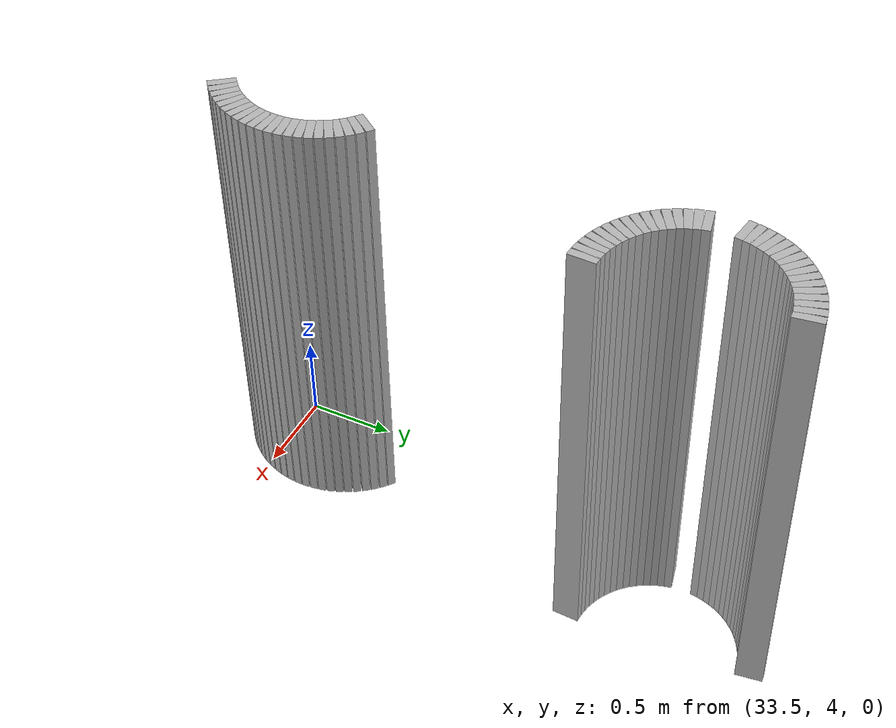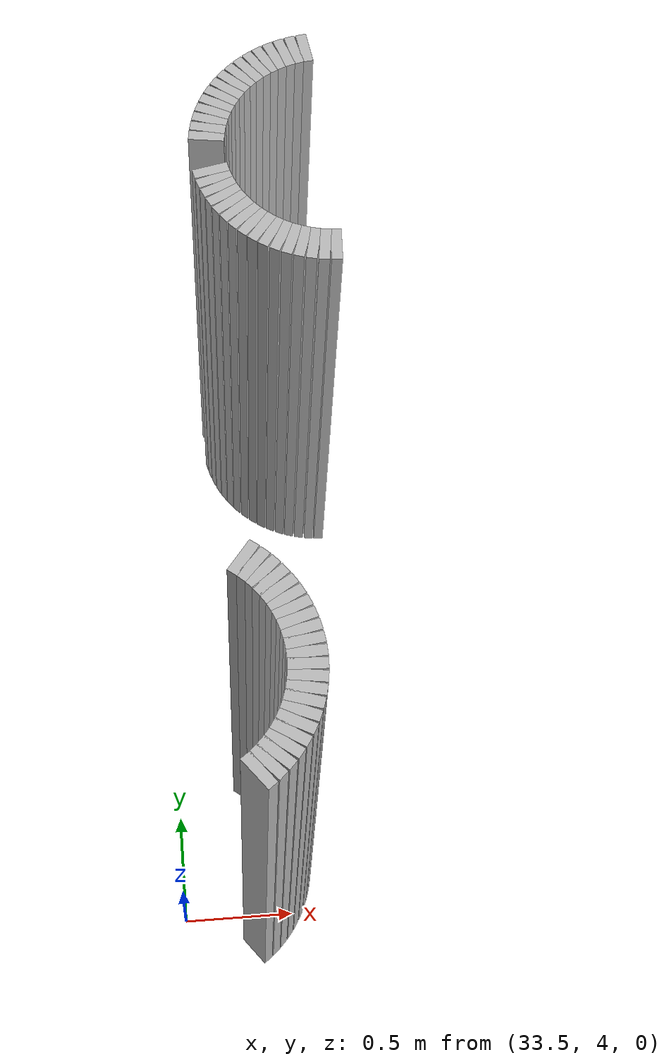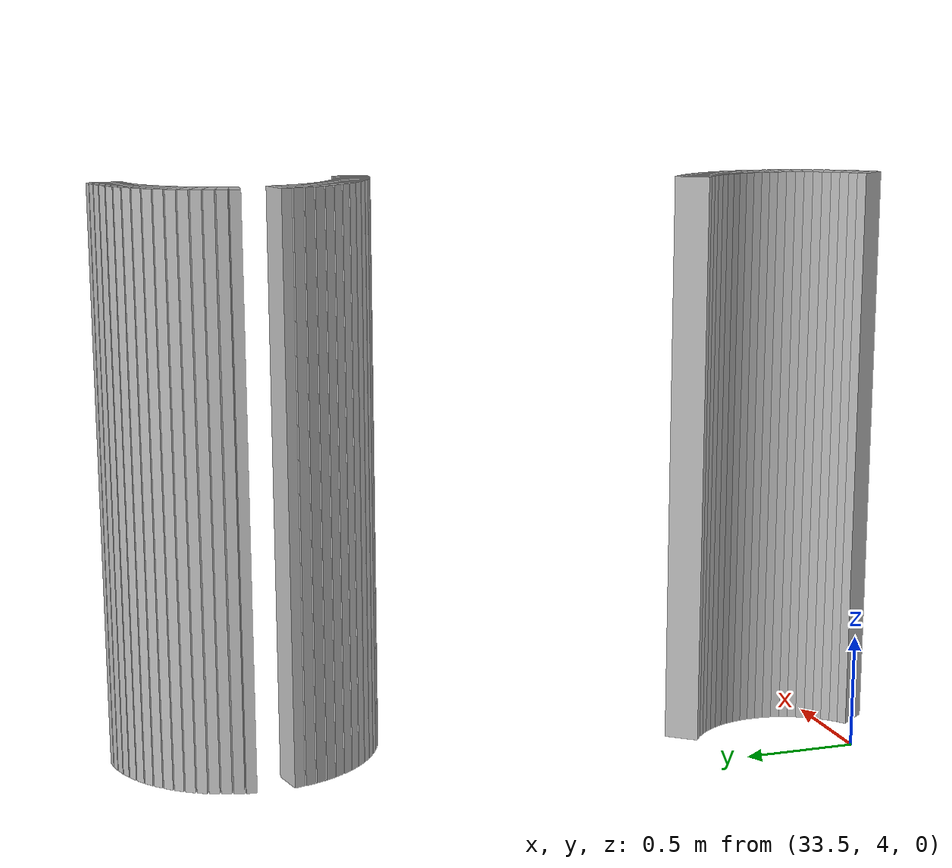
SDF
<sdf version="1.6">
 <model name="sps_2105">
  <static>1</static>
  <allow_auto_disable>0</allow_auto_disable>
  <link name="Wall1516">
   <collision name="collision"><geometry><box><size>0.0454023 0.15 2.5</size></box></geometry></collision>
   <visual name="visual">
    <geometry><box><size>0.0454023 0.15 2.5</size></box></geometry>
    <transparency>0.0</transparency>
   </visual>
   <pose>34.2988 6.05177 1.25 0 -0 3.09318</pose>
  </link>
  <link name="Wall1517">
   <collision name="collision"><geometry><box><size>0.0454156 0.15 2.5</size></box></geometry></collision>
   <visual name="visual">
    <geometry><box><size>0.0454156 0.15 2.5</size></box></geometry>
    <transparency>0.0</transparency>
   </visual>
   <pose>34.2536 6.05577 1.25 0 -0 3.01357</pose>
  </link>
  <link name="Wall1518">
   <collision name="collision"><geometry><box><size>0.0452689 0.15 2.5</size></box></geometry></collision>
   <visual name="visual">
    <geometry><box><size>0.0452689 0.15 2.5</size></box></geometry>
    <transparency>0.0</transparency>
   </visual>
   <pose>34.2089 6.06358 1.25 0 -0 2.92278</pose>
  </link>
  <link name="Wall1519">
   <collision name="collision"><geometry><box><size>0.0453611 0.15 2.5</size></box></geometry></collision>
   <visual name="visual">
    <geometry><box><size>0.0453611 0.15 2.5</size></box></geometry>
    <transparency>0.0</transparency>
   </visual>
   <pose>34.1652 6.07539 1.25 0 -0 2.83261</pose>
  </link>
  <link name="Wall1520">
   <collision name="collision"><geometry><box><size>0.0453827 0.15 2.5</size></box></geometry></collision>
   <visual name="visual">
    <geometry><box><size>0.0453827 0.15 2.5</size></box></geometry>
    <transparency>0.0</transparency>
   </visual>
   <pose>34.1226 6.0909 1.25 0 -0 2.75259</pose>
  </link>
  <link name="Wall1521">
   <collision name="collision"><geometry><box><size>0.0453183 0.15 2.5</size></box></geometry></collision>
   <visual name="visual">
    <geometry><box><size>0.0453183 0.15 2.5</size></box></geometry>
    <transparency>0.0</transparency>
   </visual>
   <pose>34.0816 6.11 1.25 0 -0 2.65987</pose>
  </link>
  <link name="Wall1522">
   <collision name="collision"><geometry><box><size>0.045342 0.15 2.5</size></box></geometry></collision>
   <visual name="visual">
    <geometry><box><size>0.045342 0.15 2.5</size></box></geometry>
    <transparency>0.0</transparency>
   </visual>
   <pose>34.0424 6.1327 1.25 0 -0 2.57301</pose>
  </link>
  <link name="Wall1523">
   <collision name="collision"><geometry><box><size>0.0453637 0.15 2.5</size></box></geometry></collision>
   <visual name="visual">
    <geometry><box><size>0.0453637 0.15 2.5</size></box></geometry>
    <transparency>0.0</transparency>
   </visual>
   <pose>34.0053 6.15871 1.25 0 -0 2.48787</pose>
  </link>
  <link name="Wall1524">
   <collision name="collision"><geometry><box><size>0.0454539 0.15 2.5</size></box></geometry></collision>
   <visual name="visual">
    <geometry><box><size>0.0454539 0.15 2.5</size></box></geometry>
    <transparency>0.0</transparency>
   </visual>
   <pose>33.9705 6.18779 1.25 0 -0 2.40369</pose>
  </link>
  <link name="Wall1525">
   <collision name="collision"><geometry><box><size>0.0454539 0.15 2.5</size></box></geometry></collision>
   <visual name="visual">
    <geometry><box><size>0.0454539 0.15 2.5</size></box></geometry>
    <transparency>0.0</transparency>
   </visual>
   <pose>33.9383 6.21989 1.25 0 -0 2.3087</pose>
  </link>
  <link name="Wall1526">
   <collision name="collision"><geometry><box><size>0.0453637 0.15 2.5</size></box></geometry></collision>
   <visual name="visual">
    <geometry><box><size>0.0453637 0.15 2.5</size></box></geometry>
    <transparency>0.0</transparency>
   </visual>
   <pose>33.9093 6.25471 1.25 0 -0 2.22452</pose>
  </link>
  <link name="Wall1527">
   <collision name="collision"><geometry><box><size>0.0451922 0.15 2.5</size></box></geometry></collision>
   <visual name="visual">
    <geometry><box><size>0.0451922 0.15 2.5</size></box></geometry>
    <transparency>0.0</transparency>
   </visual>
   <pose>33.8834 6.29179 1.25 0 -0 2.1367</pose>
  </link>
  <link name="Wall1528">
   <collision name="collision"><geometry><box><size>0.0453724 0.15 2.5</size></box></geometry></collision>
   <visual name="visual">
    <geometry><box><size>0.0453724 0.15 2.5</size></box></geometry>
    <transparency>0.0</transparency>
   </visual>
   <pose>33.8607 6.33098 1.25 0 -0 2.05189</pose>
  </link>
  <link name="Wall1529">
   <collision name="collision"><geometry><box><size>0.0454525 0.15 2.5</size></box></geometry></collision>
   <visual name="visual">
    <geometry><box><size>0.0454525 0.15 2.5</size></box></geometry>
    <transparency>0.0</transparency>
   </visual>
   <pose>33.8415 6.37208 1.25 0 -0 1.96352</pose>
  </link>
  <link name="Wall1530">
   <collision name="collision"><geometry><box><size>0.0453057 0.15 2.5</size></box></geometry></collision>
   <visual name="visual">
    <geometry><box><size>0.0453057 0.15 2.5</size></box></geometry>
    <transparency>0.0</transparency>
   </visual>
   <pose>33.826 6.41469 1.25 0 -0 1.87593</pose>
  </link>
  <link name="Wall1531">
   <collision name="collision"><geometry><box><size>0.0454345 0.15 2.5</size></box></geometry></collision>
   <visual name="visual">
    <geometry><box><size>0.0454345 0.15 2.5</size></box></geometry>
    <transparency>0.0</transparency>
   </visual>
   <pose>33.8144 6.45848 1.25 0 -0 1.78743</pose>
  </link>
  <link name="Wall1535">
   <collision name="collision"><geometry><box><size>0.0453869 0.15 2.5</size></box></geometry></collision>
   <visual name="visual">
    <geometry><box><size>0.0453869 0.15 2.5</size></box></geometry>
    <transparency>0.0</transparency>
   </visual>
   <pose>33.8064 6.63878 1.25 0 -0 1.43727</pose>
  </link>
  <link name="Wall1536">
   <collision name="collision"><geometry><box><size>0.0453153 0.15 2.5</size></box></geometry></collision>
   <visual name="visual">
    <geometry><box><size>0.0453153 0.15 2.5</size></box></geometry>
    <transparency>0.0</transparency>
   </visual>
   <pose>33.8144 6.68339 1.25 0 -0 1.35359</pose>
  </link>
  <link name="Wall1537">
   <collision name="collision"><geometry><box><size>0.0453029 0.15 2.5</size></box></geometry></collision>
   <visual name="visual">
    <geometry><box><size>0.0453029 0.15 2.5</size></box></geometry>
    <transparency>0.0</transparency>
   </visual>
   <pose>33.8261 6.7271 1.25 0 -0 1.2614</pose>
  </link>
  <link name="Wall1538">
   <collision name="collision"><geometry><box><size>0.0453827 0.15 2.5</size></box></geometry></collision>
   <visual name="visual">
    <geometry><box><size>0.0453827 0.15 2.5</size></box></geometry>
    <transparency>0.0</transparency>
   </visual>
   <pose>33.8416 6.76967 1.25 0 -0 1.1818</pose>
  </link>
  <link name="Wall1539">
   <collision name="collision"><geometry><box><size>0.0453724 0.15 2.5</size></box></geometry></collision>
   <visual name="visual">
    <geometry><box><size>0.0453724 0.15 2.5</size></box></geometry>
    <transparency>0.0</transparency>
   </visual>
   <pose>33.8607 6.81077 1.25 0 -0 1.0897</pose>
  </link>
  <link name="Wall1540">
   <collision name="collision"><geometry><box><size>0.0454964 0.15 2.5</size></box></geometry></collision>
   <visual name="visual">
    <geometry><box><size>0.0454964 0.15 2.5</size></box></geometry>
    <transparency>0.0</transparency>
   </visual>
   <pose>33.8834 6.85008 1.25 0 -0 1.00438</pose>
  </link>
  <link name="Wall1541">
   <collision name="collision"><geometry><box><size>0.0452185 0.15 2.5</size></box></geometry></collision>
   <visual name="visual">
    <geometry><box><size>0.0452185 0.15 2.5</size></box></geometry>
    <transparency>0.0</transparency>
   </visual>
   <pose>33.9094 6.88719 1.25 0 -0 0.914607</pose>
  </link>
  <link name="Wall1542">
   <collision name="collision"><geometry><box><size>0.0455735 0.15 2.5</size></box></geometry></collision>
   <visual name="visual">
    <geometry><box><size>0.0455735 0.15 2.5</size></box></geometry>
    <transparency>0.0</transparency>
   </visual>
   <pose>33.9387 6.92189 1.25 0 -0 0.828026</pose>
  </link>
  <link name="Wall1543">
   <collision name="collision"><geometry><box><size>0.0453148 0.15 2.5</size></box></geometry></collision>
   <visual name="visual">
    <geometry><box><size>0.0453148 0.15 2.5</size></box></geometry>
    <transparency>0.0</transparency>
   </visual>
   <pose>33.9708 6.95399 1.25 0 -0 0.742526</pose>
  </link>
  <link name="Wall1544">
   <collision name="collision"><geometry><box><size>0.0453637 0.15 2.5</size></box></geometry></collision>
   <visual name="visual">
    <geometry><box><size>0.0453637 0.15 2.5</size></box></geometry>
    <transparency>0.0</transparency>
   </visual>
   <pose>34.0055 6.98311 1.25 0 -0 0.653727</pose>
  </link>
  <link name="Wall1545">
   <collision name="collision"><geometry><box><size>0.045211 0.15 2.5</size></box></geometry></collision>
   <visual name="visual">
    <geometry><box><size>0.045211 0.15 2.5</size></box></geometry>
    <transparency>0.0</transparency>
   </visual>
   <pose>34.0426 7.00899 1.25 0 -0 0.564037</pose>
  </link>
  <link name="Wall1546">
   <collision name="collision"><geometry><box><size>0.0453183 0.15 2.5</size></box></geometry></collision>
   <visual name="visual">
    <geometry><box><size>0.0453183 0.15 2.5</size></box></geometry>
    <transparency>0.0</transparency>
   </visual>
   <pose>34.0817 7.03157 1.25 0 -0 0.481718</pose>
  </link>
  <link name="Wall1547">
   <collision name="collision"><geometry><box><size>0.0455089 0.15 2.5</size></box></geometry></collision>
   <visual name="visual">
    <geometry><box><size>0.0455089 0.15 2.5</size></box></geometry>
    <transparency>0.0</transparency>
   </visual>
   <pose>34.1229 7.05076 1.25 0 -0 0.392212</pose>
  </link>
  <link name="Wall1548">
   <collision name="collision"><geometry><box><size>0.0452475 0.15 2.5</size></box></geometry></collision>
   <visual name="visual">
    <geometry><box><size>0.0452475 0.15 2.5</size></box></geometry>
    <transparency>0.0</transparency>
   </visual>
   <pose>34.1655 7.06627 1.25 0 -0 0.30554</pose>
  </link>
  <link name="Wall1549">
   <collision name="collision"><geometry><box><size>0.0455072 0.15 2.5</size></box></geometry></collision>
   <visual name="visual">
    <geometry><box><size>0.0455072 0.15 2.5</size></box></geometry>
    <transparency>0.0</transparency>
   </visual>
   <pose>34.2093 7.07799 1.25 0 -0 0.217651</pose>
  </link>
  <link name="Wall1550">
   <collision name="collision"><geometry><box><size>0.0453788 0.15 2.5</size></box></geometry></collision>
   <visual name="visual">
    <geometry><box><size>0.0453788 0.15 2.5</size></box></geometry>
    <transparency>0.0</transparency>
   </visual>
   <pose>34.254 7.08589 1.25 0 -0 0.132196</pose>
  </link>
  <link name="Wall2258">
   <collision name="collision"><geometry><box><size>0.045427 0.15 2.5</size></box></geometry></collision>
   <visual name="visual">
    <geometry><box><size>0.045427 0.15 2.5</size></box></geometry>
    <transparency>0.0</transparency>
   </visual>
   <pose>33.8281 4.67198 1.25 0 0 -0.657744</pose>
  </link>
  <link name="Wall2259">
   <collision name="collision"><geometry><box><size>0.0454539 0.15 2.5</size></box></geometry></collision>
   <visual name="visual">
    <geometry><box><size>0.0454539 0.15 2.5</size></box></geometry>
    <transparency>0.0</transparency>
   </visual>
   <pose>33.8628 4.64281 1.25 0 0 -0.737905</pose>
  </link>
  <link name="Wall2260">
   <collision name="collision"><geometry><box><size>0.0453186 0.15 2.5</size></box></geometry></collision>
   <visual name="visual">
    <geometry><box><size>0.0453186 0.15 2.5</size></box></geometry>
    <transparency>0.0</transparency>
   </visual>
   <pose>33.895 4.61079 1.25 0 0 -0.830173</pose>
  </link>
  <link name="Wall2261">
   <collision name="collision"><geometry><box><size>0.0453153 0.15 2.5</size></box></geometry></collision>
   <visual name="visual">
    <geometry><box><size>0.0453153 0.15 2.5</size></box></geometry>
    <transparency>0.0</transparency>
   </visual>
   <pose>33.924 4.57609 1.25 0 0 -0.91625</pose>
  </link>
  <link name="Wall2262">
   <collision name="collision"><geometry><box><size>0.0455479 0.15 2.5</size></box></geometry></collision>
   <visual name="visual">
    <geometry><box><size>0.0455479 0.15 2.5</size></box></geometry>
    <transparency>0.0</transparency>
   </visual>
   <pose>33.95 4.53889 1.25 0 0 -1.00509</pose>
  </link>
  <link name="Wall2263">
   <collision name="collision"><geometry><box><size>0.0452338 0.15 2.5</size></box></geometry></collision>
   <visual name="visual">
    <geometry><box><size>0.0452338 0.15 2.5</size></box></geometry>
    <transparency>0.0</transparency>
   </visual>
   <pose>33.9726 4.49959 1.25 0 0 -1.09267</pose>
  </link>
  <link name="Wall2264">
   <collision name="collision"><geometry><box><size>0.0452834 0.15 2.5</size></box></geometry></collision>
   <visual name="visual">
    <geometry><box><size>0.0452834 0.15 2.5</size></box></geometry>
    <transparency>0.0</transparency>
   </visual>
   <pose>33.9918 4.4586 1.25 0 0 -1.17652</pose>
  </link>
  <link name="Wall2265">
   <collision name="collision"><geometry><box><size>0.0454804 0.15 2.5</size></box></geometry></collision>
   <visual name="visual">
    <geometry><box><size>0.0454804 0.15 2.5</size></box></geometry>
    <transparency>0.0</transparency>
   </visual>
   <pose>34.0073 4.416 1.25 0 0 -1.26687</pose>
  </link>
  <link name="Wall2266">
   <collision name="collision"><geometry><box><size>0.0452557 0.15 2.5</size></box></geometry></collision>
   <visual name="visual">
    <geometry><box><size>0.0452557 0.15 2.5</size></box></geometry>
    <transparency>0.0</transparency>
   </visual>
   <pose>34.0189 4.37221 1.25 0 0 -1.3533</pose>
  </link>
  <link name="Wall2267">
   <collision name="collision"><geometry><box><size>0.0454474 0.15 2.5</size></box></geometry></collision>
   <visual name="visual">
    <geometry><box><size>0.0454474 0.15 2.5</size></box></geometry>
    <transparency>0.0</transparency>
   </visual>
   <pose>34.0268 4.32759 1.25 0 0 -1.43745</pose>
  </link>
  <link name="Wall2268">
   <collision name="collision"><geometry><box><size>0.0453837 0.15 2.5</size></box></geometry></collision>
   <visual name="visual">
    <geometry><box><size>0.0453837 0.15 2.5</size></box></geometry>
    <transparency>0.0</transparency>
   </visual>
   <pose>34.0308 4.28239 1.25 0 0 -1.53179</pose>
  </link>
  <link name="Wall2269">
   <collision name="collision"><geometry><box><size>0.0452617 0.15 2.5</size></box></geometry></collision>
   <visual name="visual">
    <geometry><box><size>0.0452617 0.15 2.5</size></box></geometry>
    <transparency>0.0</transparency>
   </visual>
   <pose>34.0308 4.23711 1.25 0 0 -1.60991</pose>
  </link>
  <link name="Wall2270">
   <collision name="collision"><geometry><box><size>0.0453869 0.15 2.5</size></box></geometry></collision>
   <visual name="visual">
    <geometry><box><size>0.0453869 0.15 2.5</size></box></geometry>
    <transparency>0.0</transparency>
   </visual>
   <pose>34.0268 4.192 1.25 0 0 -1.70433</pose>
  </link>
  <link name="Wall2271">
   <collision name="collision"><geometry><box><size>0.0454941 0.15 2.5</size></box></geometry></collision>
   <visual name="visual">
    <geometry><box><size>0.0454941 0.15 2.5</size></box></geometry>
    <transparency>0.0</transparency>
   </visual>
   <pose>34.0189 4.14729 1.25 0 0 -1.78714</pose>
  </link>
  <link name="Wall2272">
   <collision name="collision"><geometry><box><size>0.0453057 0.15 2.5</size></box></geometry></collision>
   <visual name="visual">
    <geometry><box><size>0.0453057 0.15 2.5</size></box></geometry>
    <transparency>0.0</transparency>
   </visual>
   <pose>34.0073 4.10347 1.25 0 0 -1.87593</pose>
  </link>
  <link name="Wall2273">
   <collision name="collision"><geometry><box><size>0.0452271 0.15 2.5</size></box></geometry></collision>
   <visual name="visual">
    <geometry><box><size>0.0452271 0.15 2.5</size></box></geometry>
    <transparency>0.0</transparency>
   </visual>
   <pose>33.9918 4.06099 1.25 0 0 -1.96559</pose>
  </link>
  <link name="Wall2274">
   <collision name="collision"><geometry><box><size>0.0455348 0.15 2.5</size></box></geometry></collision>
   <visual name="visual">
    <geometry><box><size>0.0455348 0.15 2.5</size></box></geometry>
    <transparency>0.0</transparency>
   </visual>
   <pose>33.9726 4.01991 1.25 0 0 -2.05003</pose>
  </link>
  <link name="Wall2275">
   <collision name="collision"><geometry><box><size>0.045342 0.15 2.5</size></box></geometry></collision>
   <visual name="visual">
    <geometry><box><size>0.045342 0.15 2.5</size></box></geometry>
    <transparency>0.0</transparency>
   </visual>
   <pose>33.9499 3.98061 1.25 0 0 -2.13938</pose>
  </link>
  <link name="Wall2276">
   <collision name="collision"><geometry><box><size>0.0453637 0.15 2.5</size></box></geometry></collision>
   <visual name="visual">
    <geometry><box><size>0.0453637 0.15 2.5</size></box></geometry>
    <transparency>0.0</transparency>
   </visual>
   <pose>33.9239 3.9435 1.25 0 0 -2.22452</pose>
  </link>
  <link name="Wall2277">
   <collision name="collision"><geometry><box><size>0.0454388 0.15 2.5</size></box></geometry></collision>
   <visual name="visual">
    <geometry><box><size>0.0454388 0.15 2.5</size></box></geometry>
    <transparency>0.0</transparency>
   </visual>
   <pose>33.8946 3.9088 1.25 0 0 -2.31629</pose>
  </link>
  <link name="Wall2278">
   <collision name="collision"><geometry><box><size>0.0453148 0.15 2.5</size></box></geometry></collision>
   <visual name="visual">
    <geometry><box><size>0.0453148 0.15 2.5</size></box></geometry>
    <transparency>0.0</transparency>
   </visual>
   <pose>33.8625 3.87678 1.25 0 0 -2.39907</pose>
  </link>
  <link name="Wall2279">
   <collision name="collision"><geometry><box><size>0.0453637 0.15 2.5</size></box></geometry></collision>
   <visual name="visual">
    <geometry><box><size>0.0453637 0.15 2.5</size></box></geometry>
    <transparency>0.0</transparency>
   </visual>
   <pose>33.8278 3.84767 1.25 0 0 -2.48787</pose>
  </link>
 </model>
</sdf>
